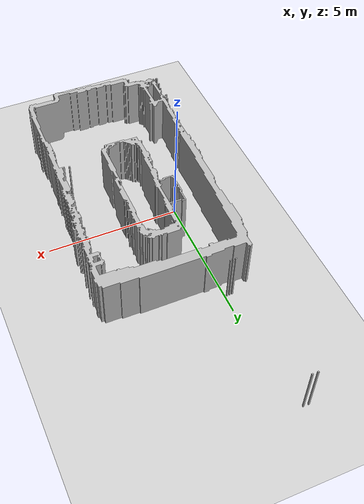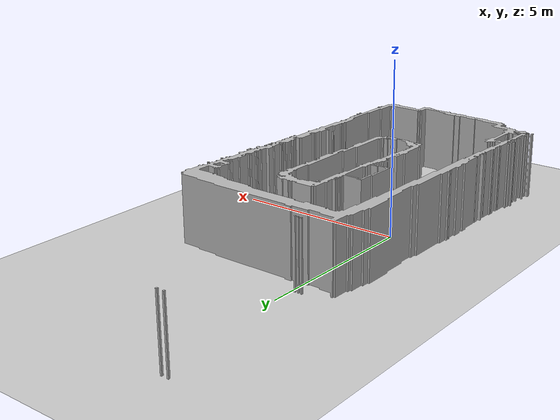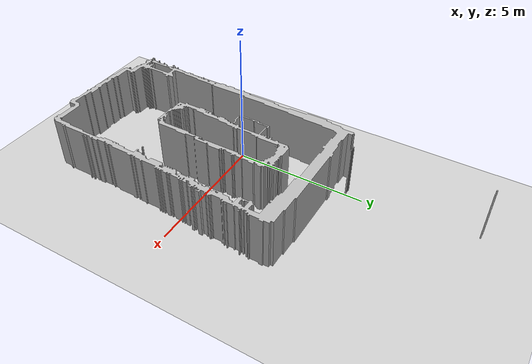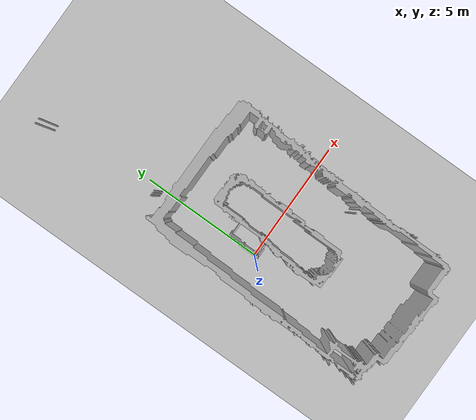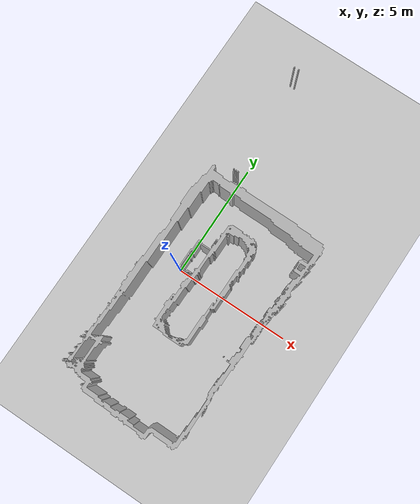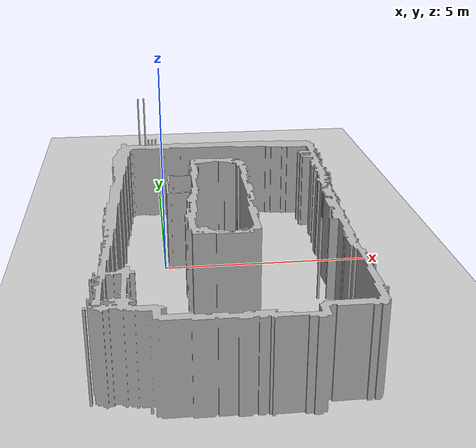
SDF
<?xml version="1.0"?>
<sdf version="1.6"><world name="meeting_room"><include><uri>model://ground_plane</uri></include><include><uri>model://sun</uri></include><plugin name="ros_init" filename="libgazebo_ros_init.so"/><plugin name="ros_factory" filename="libgazebo_ros_factory.so"/><model name="walls"><static>true</static><link name="link"><collision name="c"><geometry><mesh><uri>model://meeting_room_walls.stl</uri></mesh></geometry></collision><visual name="v"><geometry><mesh><uri>model://meeting_room_walls.stl</uri></mesh></geometry></visual></link></model></world></sdf>
